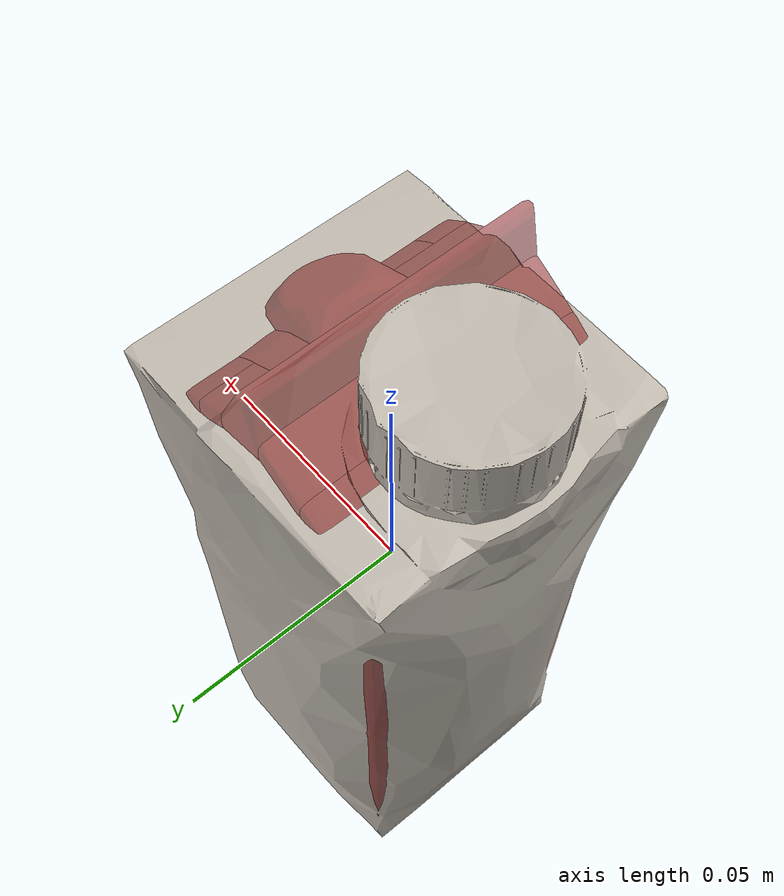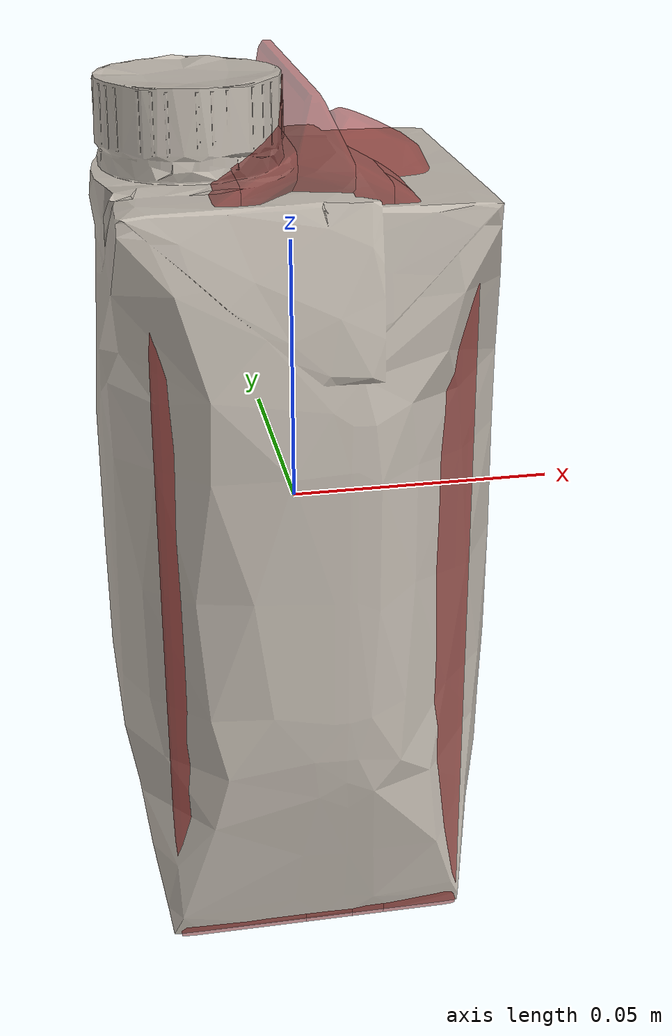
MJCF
<?xml version='1.0' encoding='utf-8'?>
<mujoco model="milk_34">
  <asset>
    <mesh file="visual/model_normalized_0.obj" name="model_normalized_0_vis" scale="0.15999999999999995 0.15999999999999995 0.15999999999999995" refquat="0.7071067811865475 0.0 0.0 0.7071067811865476" />
    <mesh file="visual/model_normalized_1.obj" name="model_normalized_1_vis" scale="0.15999999999999995 0.15999999999999995 0.15999999999999995" refquat="0.7071067811865475 0.0 0.0 0.7071067811865476" />
    <texture type="2d" name="image0" file="visual/image0.png" />
    <material name="lambert2" texture="image0" specular="0.5" shininess="0.15999998099999999" />
    <material name="lambert3.001" texture="image0" specular="0.5" shininess="0.15999998099999999" />
    <mesh file="collision/collision_mesh_collision_0.obj" name="milk_collision_mesh_0" scale="0.15999999999999995 0.15999999999999995 0.15999999999999995" refquat="0.7071067811865475 0.0 0.0 0.7071067811865476" />
    <mesh file="collision/collision_mesh_collision_1.obj" name="milk_collision_mesh_1" scale="0.15999999999999995 0.15999999999999995 0.15999999999999995" refquat="0.7071067811865475 0.0 0.0 0.7071067811865476" />
    <mesh file="collision/collision_mesh_collision_2.obj" name="milk_collision_mesh_2" scale="0.15999999999999995 0.15999999999999995 0.15999999999999995" refquat="0.7071067811865475 0.0 0.0 0.7071067811865476" />
    <mesh file="collision/collision_mesh_collision_3.obj" name="milk_collision_mesh_3" scale="0.15999999999999995 0.15999999999999995 0.15999999999999995" refquat="0.7071067811865475 0.0 0.0 0.7071067811865476" />
    <mesh file="collision/collision_mesh_collision_4.obj" name="milk_collision_mesh_4" scale="0.15999999999999995 0.15999999999999995 0.15999999999999995" refquat="0.7071067811865475 0.0 0.0 0.7071067811865476" />
    <mesh file="collision/collision_mesh_collision_5.obj" name="milk_collision_mesh_5" scale="0.15999999999999995 0.15999999999999995 0.15999999999999995" refquat="0.7071067811865475 0.0 0.0 0.7071067811865476" />
    <mesh file="collision/collision_mesh_collision_6.obj" name="milk_collision_mesh_6" scale="0.15999999999999995 0.15999999999999995 0.15999999999999995" refquat="0.7071067811865475 0.0 0.0 0.7071067811865476" />
    <mesh file="collision/collision_mesh_collision_7.obj" name="milk_collision_mesh_7" scale="0.15999999999999995 0.15999999999999995 0.15999999999999995" refquat="0.7071067811865475 0.0 0.0 0.7071067811865476" />
    <mesh file="collision/collision_mesh_collision_8.obj" name="milk_collision_mesh_8" scale="0.15999999999999995 0.15999999999999995 0.15999999999999995" refquat="0.7071067811865475 0.0 0.0 0.7071067811865476" />
    <mesh file="collision/collision_mesh_collision_9.obj" name="milk_collision_mesh_9" scale="0.15999999999999995 0.15999999999999995 0.15999999999999995" refquat="0.7071067811865475 0.0 0.0 0.7071067811865476" />
    <mesh file="collision/collision_mesh_collision_10.obj" name="milk_collision_mesh_10" scale="0.15999999999999995 0.15999999999999995 0.15999999999999995" refquat="0.7071067811865475 0.0 0.0 0.7071067811865476" />
    <mesh file="collision/collision_mesh_collision_11.obj" name="milk_collision_mesh_11" scale="0.15999999999999995 0.15999999999999995 0.15999999999999995" refquat="0.7071067811865475 0.0 0.0 0.7071067811865476" />
    <mesh file="collision/collision_mesh_collision_12.obj" name="milk_collision_mesh_12" scale="0.15999999999999995 0.15999999999999995 0.15999999999999995" refquat="0.7071067811865475 0.0 0.0 0.7071067811865476" />
  </asset>
  <default>
    <default class="region">
      <geom group="1" conaffinity="0" contype="0" rgba="0 1 0 0" mass="0" />
    </default>
    <default class="collision">
      <geom group="0" rgba="0.5 0 0 0.5" density="1089.852086721" />
    </default>
  </default>
  <worldbody>
    <body>
      <body name="object">
        <geom solimp="0.998 0.998 0.001" solref="0.001 1" density="108.985208672" friction="0.95 0.3 0.1" type="mesh" mesh="model_normalized_0_vis" conaffinity="0" contype="0" group="1" material="lambert3.001" />
        <geom solimp="0.998 0.998 0.001" solref="0.001 1" density="108.985208672" friction="0.95 0.3 0.1" type="mesh" mesh="model_normalized_1_vis" conaffinity="0" contype="0" group="1" material="lambert2" />
        <geom class="region" name="reg_bbox" type="box" pos="0.0 0.0 -0.00022113840000000267" size="0.02768176479999999 0.02768176479999999 0.08065886479999997" />
        <geom mesh="milk_collision_mesh_0" type="mesh" class="collision" />
        <geom mesh="milk_collision_mesh_1" type="mesh" class="collision" />
        <geom mesh="milk_collision_mesh_2" type="mesh" class="collision" />
        <geom mesh="milk_collision_mesh_3" type="mesh" class="collision" />
        <geom mesh="milk_collision_mesh_4" type="mesh" class="collision" />
        <geom mesh="milk_collision_mesh_5" type="mesh" class="collision" />
        <geom mesh="milk_collision_mesh_6" type="mesh" class="collision" />
        <geom mesh="milk_collision_mesh_7" type="mesh" class="collision" />
        <geom mesh="milk_collision_mesh_8" type="mesh" class="collision" />
        <geom mesh="milk_collision_mesh_9" type="mesh" class="collision" />
        <geom mesh="milk_collision_mesh_10" type="mesh" class="collision" />
        <geom mesh="milk_collision_mesh_11" type="mesh" class="collision" />
        <geom mesh="milk_collision_mesh_12" type="mesh" class="collision" />
      </body>
    </body>
  </worldbody>
</mujoco>
